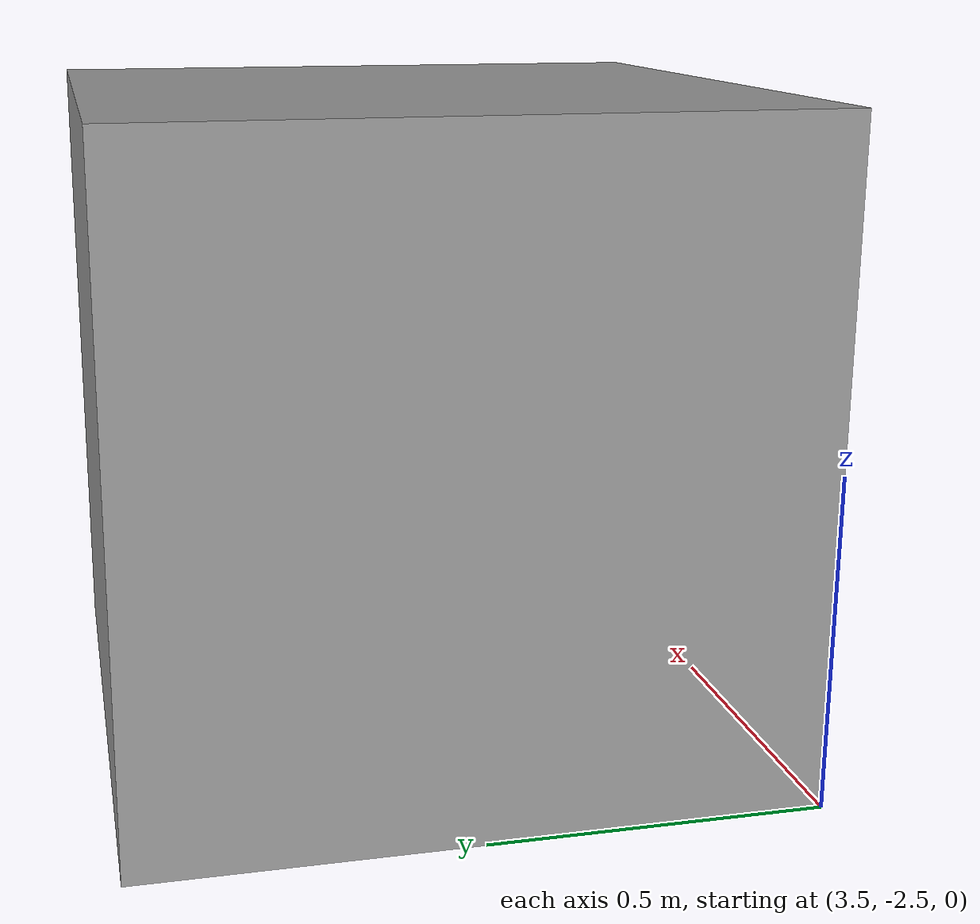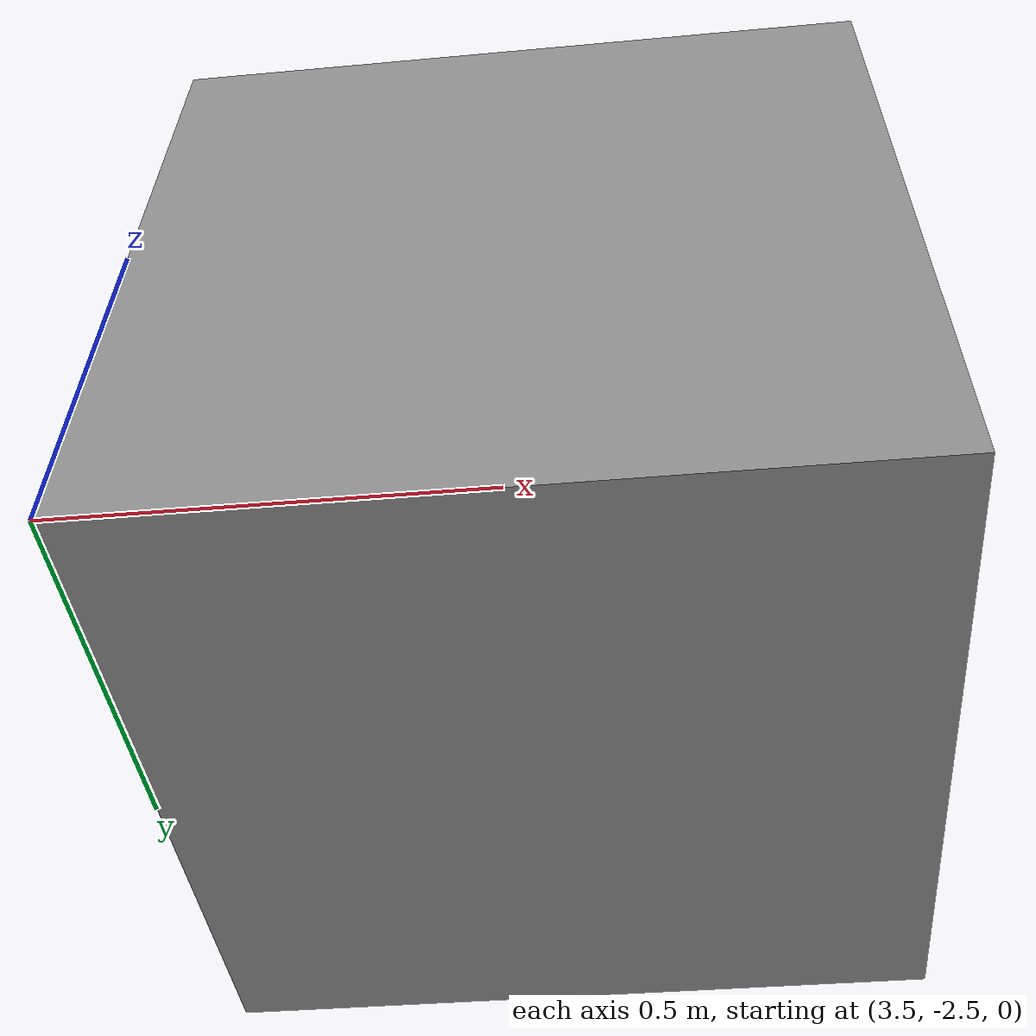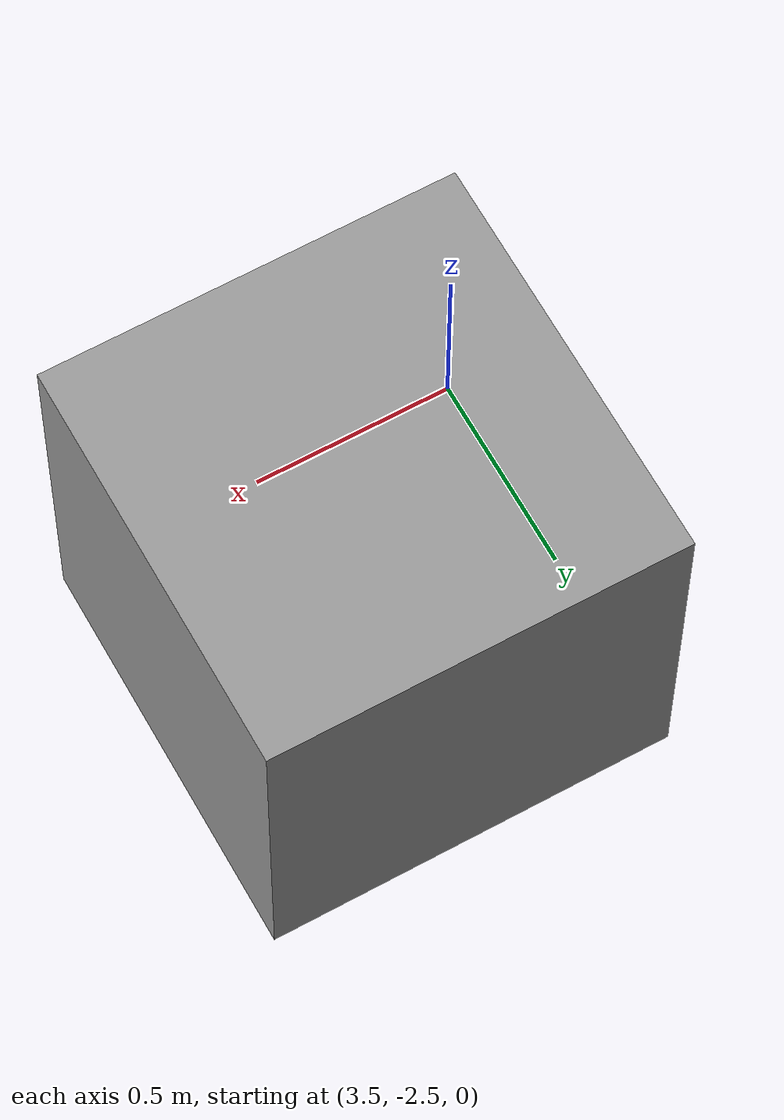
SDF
<?xml version='1.0'?>
<sdf version='1.4'>
<model name='unit_box_1'>
      <pose>4 -2 0.5 0 -0 0</pose>
      <link name='link'>
        <inertial>
          <mass>1</mass>
          <inertia>
            <ixx>1</ixx>
            <ixy>0</ixy>
            <ixz>0</ixz>
            <iyy>1</iyy>
            <iyz>0</iyz>
            <izz>1</izz>
          </inertia>
        </inertial>
        <collision name='collision'>
          <geometry>
            <box>
              <size>1 1 1</size>
            </box>
          </geometry>
          <max_contacts>10</max_contacts>
          <surface>
            <bounce/>
            <friction>
              <ode/>
            </friction>
            <contact>
              <ode/>
            </contact>
          </surface>
        </collision>
        <visual name='visual'>
          <geometry>
            <box>
              <size>1 1 1</size>
            </box>
          </geometry>
          <material>
            <script>
              <uri>file://media/materials/scripts/gazebo.material</uri>
              <name>Gazebo/Grey</name>
            </script>
          </material>
        </visual>
        <velocity_decay>
          <linear>0</linear>
          <angular>0</angular>
        </velocity_decay>
        <self_collide>0</self_collide>
        <kinematic>0</kinematic>
        <gravity>1</gravity>
      </link>
      <static>0</static>
    </model>
</sdf>
